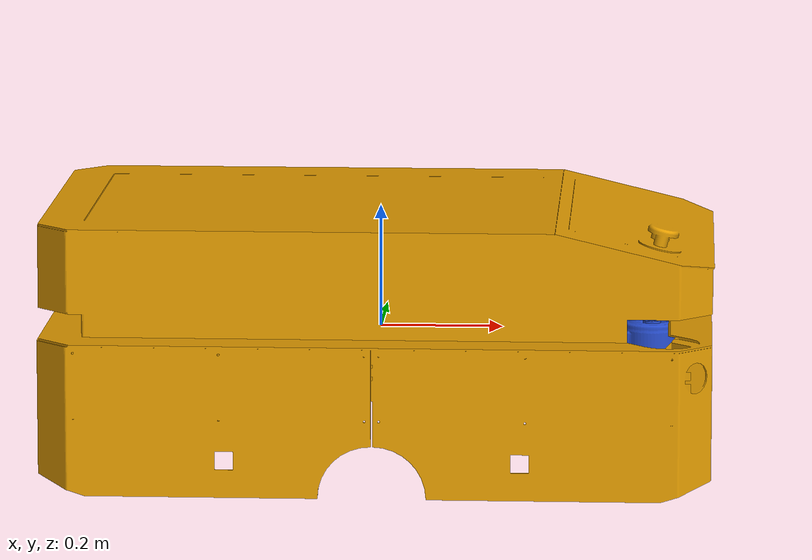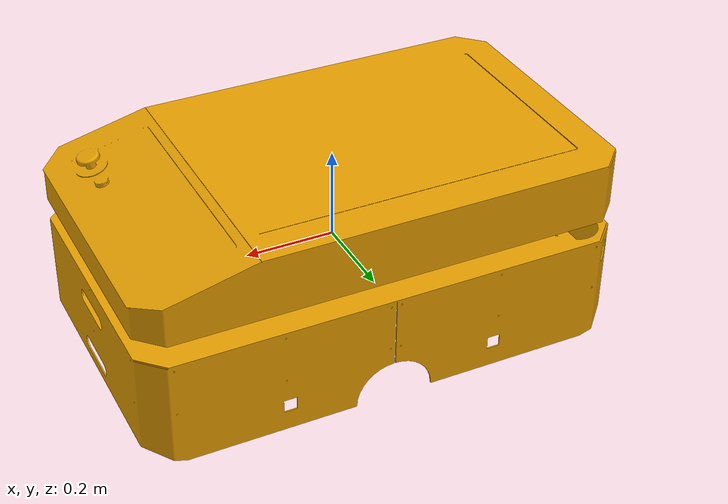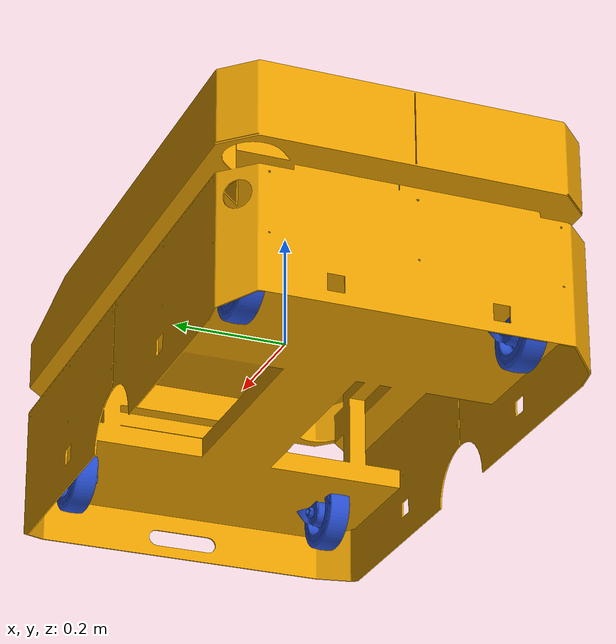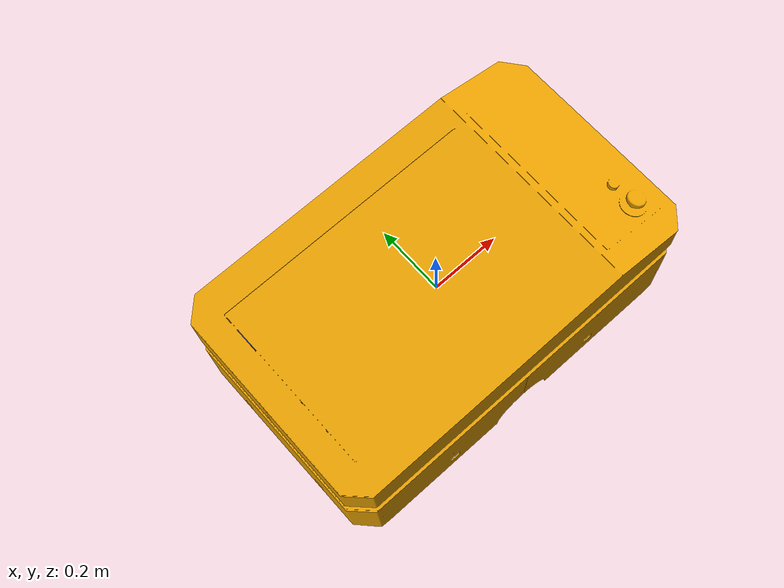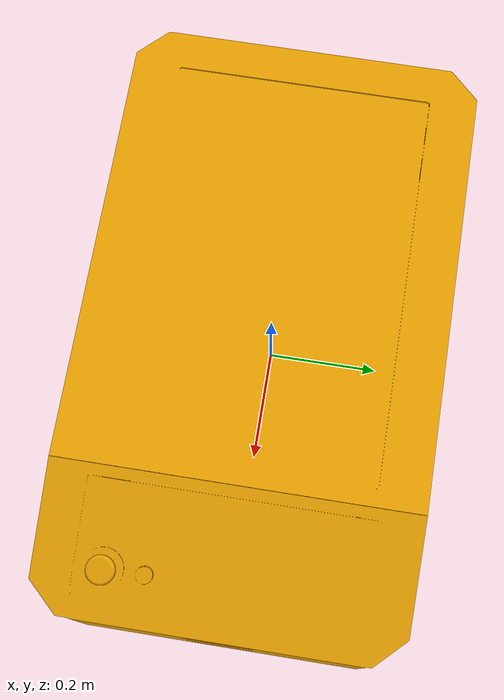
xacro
<?xml version="1.0"?>
<robot name="robot" xmlns:xacro="http://www.ros.org/wiki/xacro">

    <!-- ==== BASE LINK ==== -->
    <link name="base_link">
        <pose>0 0 0 0 0 0</pose>
        <visual>
            <geometry>
                <mesh filename="package://robot_description/meshes/chassis.stl" scale="1 1 1" />
            </geometry>
            <origin xyz="0 0 0" rpy="0 0 0"/>
        </visual>
        <collision>
            <geometry>
                <mesh filename="package://robot_description/meshes/chassis.stl" scale="1 1 1" />
            </geometry>
            <surface>
                <friction>
                    <ode>
                        <mu>0</mu>
                        <mu2>0</mu2>
                        <slip1>1.0</slip1>
                        <slip2>1.0</slip2>
                    </ode>
                </friction>
            </surface>
            <origin xyz="0 0 0" rpy="0 0 0"/>
        </collision>
        <inertial>
            <mass value="5"/>
            <inertia ixx="1.0" ixy="0.0" ixz="0.0" iyy="1.0" iyz="0.0" izz="1.0" />
        </inertial>

        <!-- ==== FRONT LEFT CASTER WHEEL ==== -->
        <visual>
            <geometry>
                <mesh filename="package://robot_description/meshes/caster_wheel.stl" scale="1 1 1" />
             </geometry>
            <origin xyz="0.410295 0.24 -0.112536" rpy="0 0 0"/>
            <material name="blue"/>
        </visual>
        <collision>
            <geometry>
                <mesh filename="package://robot_description/meshes/caster_wheel.stl" scale="1 1 1" />
            </geometry>
            <surface>
                <friction>
                    <ode>
                        <mu>0</mu>
                        <mu2>0</mu2>
                        <slip1>1.0</slip1>
                        <slip2>1.0</slip2>
                    </ode>
                </friction>
            </surface>
            <origin xyz="0.410295 0.24 -0.112536" rpy="0 0 0"/>
        </collision>

        <!-- ==== FRONT RIGHT CASTER WHEEL ==== -->
        <visual>
            <geometry>
                <mesh filename="package://robot_description/meshes/caster_wheel.stl"  scale="1 1 1" />
             </geometry>
            <origin xyz="0.410295 -0.24 -0.112536" rpy="0 0 0"/>
            <material name="blue"/>
        </visual>
        <collision>
            <geometry>
                <mesh filename="package://robot_description/meshes/caster_wheel.stl"  scale="1 1 1" />
            </geometry>
            <surface>
                <friction>
                    <ode>
                        <mu>0</mu>
                        <mu2>0</mu2>
                        <slip1>1.0</slip1>
                        <slip2>1.0</slip2>
                    </ode>
                </friction>
            </surface>
            <origin xyz="0.410295 -0.24 -0.112536" rpy="0 0 0"/>
        </collision>

        <!-- ==== BACK LEFT CASTER WHEEL ==== -->
        <visual>
            <geometry>
                <mesh filename="package://robot_description/meshes/caster_wheel.stl"  scale="1 1 1" />
             </geometry>
            <origin xyz="-0.410295 0.24 -0.112536" rpy="0 0 0"/>
            <material name="blue"/>
        </visual>
        <collision>
            <geometry>
                <mesh filename="package://robot_description/meshes/caster_wheel.stl"  scale="1 1 1" />
            </geometry>
            <surface>
                <friction>
                    <ode>
                        <mu>0</mu>
                        <mu2>0</mu2>
                        <slip1>1.0</slip1>
                        <slip2>1.0</slip2>
                    </ode>
                </friction>
            </surface>
            <origin xyz="-0.410295 0.24 -0.112536" rpy="0 0 0"/>
        </collision>

        <!-- ==== BACK RIGHT CASTER WHEEL ==== -->
        <visual>
            <geometry>
                <mesh filename="package://robot_description/meshes/caster_wheel.stl"  scale="1 1 1" />
             </geometry>
            <origin xyz="-0.410295 -0.24 -0.112536" rpy="0 0 0"/>
            <material name="blue"/>
        </visual>
        <collision>
            <geometry>
                <mesh filename="package://robot_description/meshes/caster_wheel.stl"  scale="1 1 1" />
            </geometry>
            <surface>
                <friction>
                    <ode>
                        <mu>0</mu>
                        <mu2>0</mu2>
                        <slip1>1.0</slip1>
                        <slip2>1.0</slip2>
                    </ode>
                </friction>
            </surface>
            <origin xyz="-0.410295 -0.24 -0.112536" rpy="0 0 0"/>
        </collision>
    </link>

</robot>
